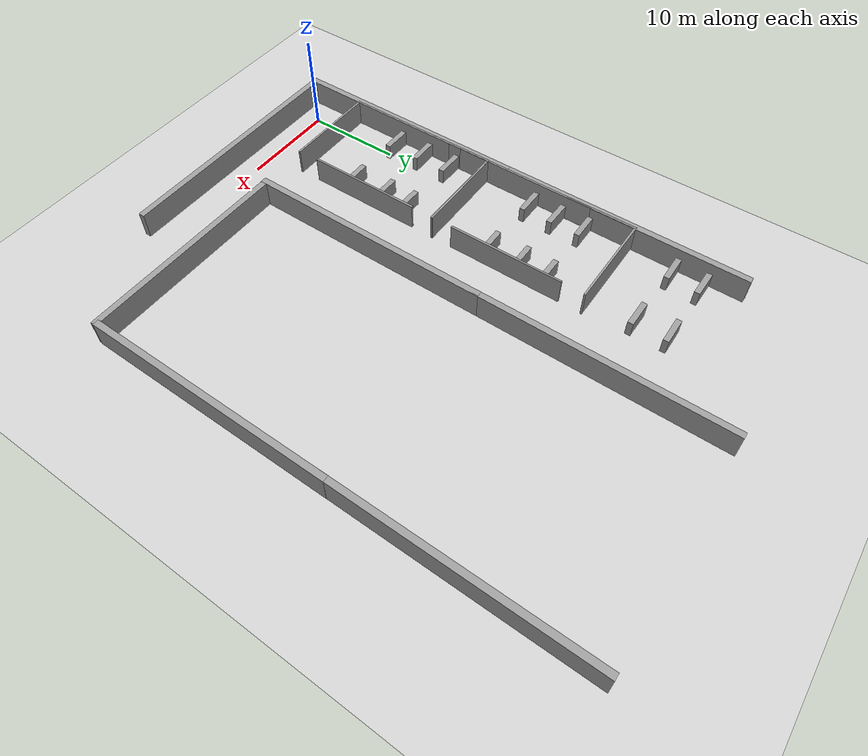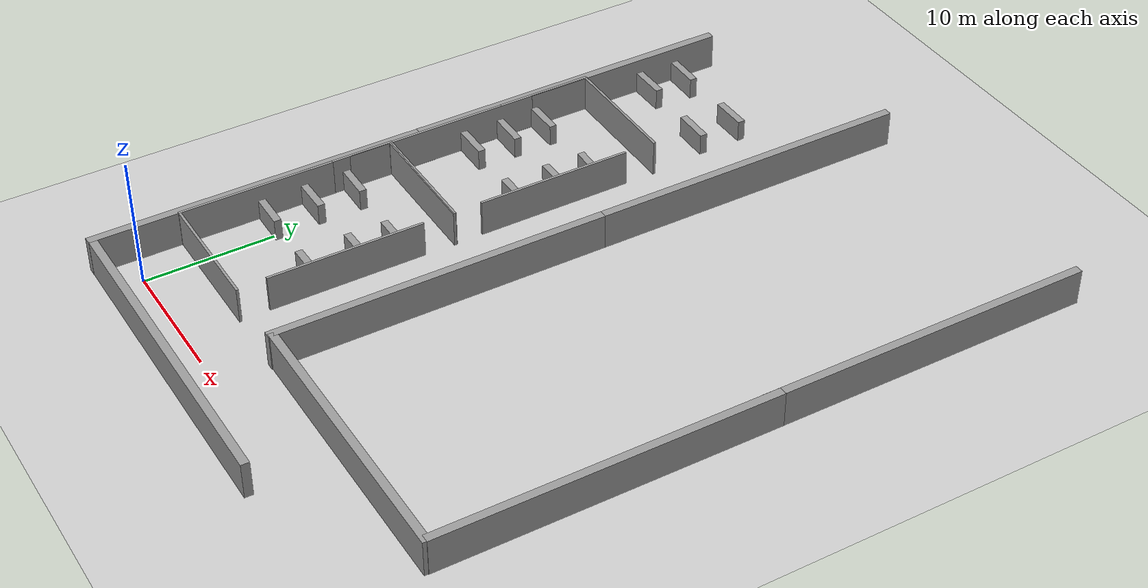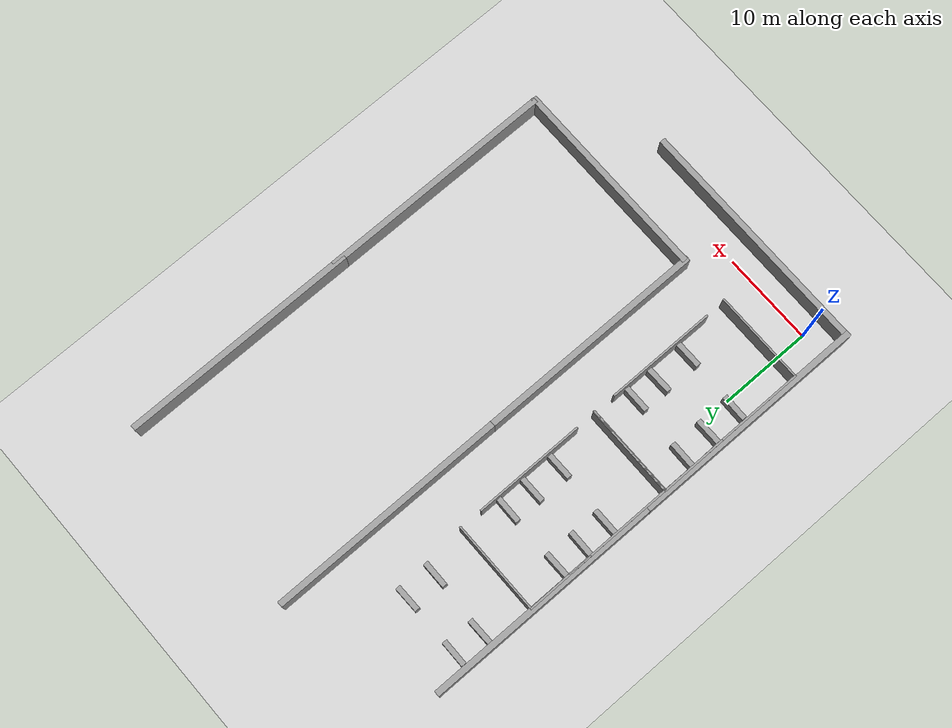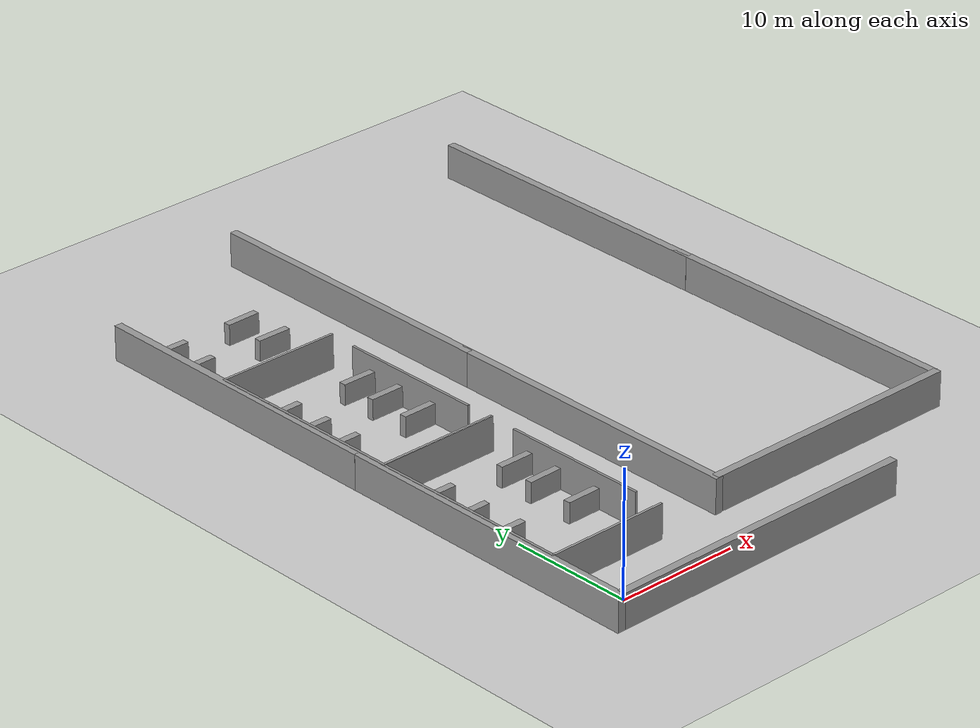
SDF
<sdf version="1.7">
 <world name="default">
  <model name="ground_plane">
   <static>1</static>
   <link name="link">
    <collision name="collision">
     <geometry><plane><normal>0 0 1</normal><size>100 100</size></plane></geometry>
     <surface><friction><ode><mu>100</mu><mu2>50</mu2></ode></friction></surface>
    </collision>
    <visual name="visual">
     <cast_shadows>0</cast_shadows>
     <geometry><plane><normal>0 0 1</normal><size>100 100</size></plane></geometry>
     <material>
      <script><uri>file://media/materials/scripts/gazebo.material</uri><name>Gazebo/Grey</name></script>
     </material>
    </visual>
   </link>
  </model>
  <model name="grey_wall_long">
   <link name="link">
    <pose>0 0 1.37589 0 -0 0</pose>
    <inertial>
     <inertia><ixx>0</ixx><ixy>0</ixy><ixz>0</ixz><iyy>0</iyy><iyz>0</iyz><izz>0</izz></inertia>
     <mass>0</mass>
    </inertial>
    <visual name="visual">
     <cast_shadows>0</cast_shadows>
     <geometry><box><size>25.8815 0.642976 2.8</size></box></geometry>
     <material>
      <script>
       <uri>model://grey_wall/materials/scripts</uri>
       <uri>model://grey_wall/materials/textures</uri>
       <name>vrc/grey_wall</name>
      </script>
      <shader type="pixel"><normal_map>__default__</normal_map></shader>
      <ambient>1 1 1 1</ambient>
      <diffuse>1 1 1 1</diffuse>
      <specular>0 0 0 1</specular>
      <emissive>0 0 0 1</emissive>
     </material>
    </visual>
    <collision name="collision">
     <geometry><box><size>25.8815 0.642976 2.8</size></box></geometry>
     <surface>
      <friction>
       <ode><mu>1</mu><mu2>1</mu2><fdir1>0 0 0</fdir1><slip1>0</slip1><slip2>0</slip2></ode>
       <torsional>
        <coefficient>1</coefficient>
        <patch_radius>0</patch_radius>
        <surface_radius>0</surface_radius>
        <use_patch_radius>1</use_patch_radius>
        <ode><slip>0</slip></ode>
       </torsional>
      </friction>
      <bounce><restitution_coefficient>0</restitution_coefficient><threshold>1e+06</threshold></bounce>
      <contact>
       <collide_without_contact>0</collide_without_contact>
       <collide_without_contact_bitmask>1</collide_without_contact_bitmask>
       <collide_bitmask>1</collide_bitmask>
       <ode>
        <soft_cfm>0</soft_cfm>
        <soft_erp>0.2</soft_erp>
        <kp>1e+13</kp>
        <kd>1</kd>
        <max_vel>0.01</max_vel>
        <min_depth>0</min_depth>
       </ode>
       <bullet>
        <split_impulse>1</split_impulse>
        <split_impulse_penetration_threshold>-0.01</split_impulse_penetration_threshold>
        <soft_cfm>0</soft_cfm>
        <soft_erp>0.2</soft_erp>
        <kp>1e+13</kp>
        <kd>1</kd>
       </bullet>
      </contact>
     </surface>
    </collision>
   </link>
   <static>1</static>
   <pose>10.3524 -2.38269 0 0 -0 0</pose>
  </model>
  <model name="grew_wall_long_vertial">
   <model name="grey_wall_long">
    <link name="link">
     <pose>0 0 1.37589 0 -0 0</pose>
     <inertial>
      <inertia><ixx>0</ixx><ixy>0</ixy><ixz>0</ixz><iyy>0</iyy><iyz>0</iyz><izz>0</izz></inertia>
      <mass>0</mass>
     </inertial>
     <visual name="visual">
      <cast_shadows>0</cast_shadows>
      <geometry><box><size>25.8815 0.642976 2.8</size></box></geometry>
      <material>
       <script>
        <uri>model://grey_wall/materials/scripts</uri>
        <uri>model://grey_wall/materials/textures</uri>
        <name>vrc/grey_wall</name>
       </script>
       <shader type="pixel"><normal_map>__default__</normal_map></shader>
       <ambient>1 1 1 1</ambient>
       <diffuse>1 1 1 1</diffuse>
       <specular>0 0 0 1</specular>
       <emissive>0 0 0 1</emissive>
      </material>
     </visual>
     <collision name="collision">
      <geometry><box><size>25.8815 0.642976 2.8</size></box></geometry>
      <surface>
       <friction>
        <ode><mu>1</mu><mu2>1</mu2><fdir1>0 0 0</fdir1><slip1>0</slip1><slip2>0</slip2></ode>
        <torsional>
         <coefficient>1</coefficient>
         <patch_radius>0</patch_radius>
         <surface_radius>0</surface_radius>
         <use_patch_radius>1</use_patch_radius>
         <ode><slip>0</slip></ode>
        </torsional>
       </friction>
       <bounce><restitution_coefficient>0</restitution_coefficient><threshold>1e+06</threshold></bounce>
       <contact>
        <collide_without_contact>0</collide_without_contact>
        <collide_without_contact_bitmask>1</collide_without_contact_bitmask>
        <collide_bitmask>1</collide_bitmask>
        <ode>
         <soft_cfm>0</soft_cfm>
         <soft_erp>0.2</soft_erp>
         <kp>1e+13</kp>
         <kd>1</kd>
         <max_vel>0.01</max_vel>
         <min_depth>0</min_depth>
        </ode>
        <bullet>
         <split_impulse>1</split_impulse>
         <split_impulse_penetration_threshold>-0.01</split_impulse_penetration_threshold>
         <soft_cfm>0</soft_cfm>
         <soft_erp>0.2</soft_erp>
         <kp>1e+13</kp>
         <kd>1</kd>
        </bullet>
       </contact>
      </surface>
     </collision>
    </link>
    <static>1</static>
    <pose>1e-06 -0 0 0 -0 1.57003</pose>
   </model>
   <static>0</static>
   <pose>-2.8099 10.2266 0 0 -0 0</pose>
  </model>
  <model name="grew_wall_long_vertial_0">
   <model name="grey_wall_long">
    <link name="link">
     <pose>0 0 1.37589 0 -0 0</pose>
     <inertial>
      <inertia><ixx>0</ixx><ixy>0</ixy><ixz>0</ixz><iyy>0</iyy><iyz>0</iyz><izz>0</izz></inertia>
      <mass>0</mass>
     </inertial>
     <visual name="visual">
      <cast_shadows>0</cast_shadows>
      <geometry><box><size>25.8815 0.642976 2.8</size></box></geometry>
      <material>
       <script>
        <uri>model://grey_wall/materials/scripts</uri>
        <uri>model://grey_wall/materials/textures</uri>
        <name>vrc/grey_wall</name>
       </script>
       <shader type="pixel"><normal_map>__default__</normal_map></shader>
       <ambient>1 1 1 1</ambient>
       <diffuse>1 1 1 1</diffuse>
       <specular>0 0 0 1</specular>
       <emissive>0 0 0 1</emissive>
      </material>
     </visual>
     <collision name="collision">
      <geometry><box><size>25.8815 0.642976 2.8</size></box></geometry>
      <surface>
       <friction>
        <ode><mu>1</mu><mu2>1</mu2><fdir1>0 0 0</fdir1><slip1>0</slip1><slip2>0</slip2></ode>
        <torsional>
         <coefficient>1</coefficient>
         <patch_radius>0</patch_radius>
         <surface_radius>0</surface_radius>
         <use_patch_radius>1</use_patch_radius>
         <ode><slip>0</slip></ode>
        </torsional>
       </friction>
       <bounce><restitution_coefficient>0</restitution_coefficient><threshold>1e+06</threshold></bounce>
       <contact>
        <collide_without_contact>0</collide_without_contact>
        <collide_without_contact_bitmask>1</collide_without_contact_bitmask>
        <collide_bitmask>1</collide_bitmask>
        <ode>
         <soft_cfm>0</soft_cfm>
         <soft_erp>0.2</soft_erp>
         <kp>1e+13</kp>
         <kd>1</kd>
         <max_vel>0.01</max_vel>
         <min_depth>0</min_depth>
        </ode>
        <bullet>
         <split_impulse>1</split_impulse>
         <split_impulse_penetration_threshold>-0.01</split_impulse_penetration_threshold>
         <soft_cfm>0</soft_cfm>
         <soft_erp>0.2</soft_erp>
         <kp>1e+13</kp>
         <kd>1</kd>
        </bullet>
       </contact>
      </surface>
     </collision>
    </link>
    <static>1</static>
    <pose>1e-06 -0 0 0 -0 1.57003</pose>
   </model>
   <static>0</static>
   <pose>-2.79602 36.045 0 0 -0 0</pose>
  </model>
  <model name="jiaoshi">
   <model name="grey_wall">
    <static>1</static>
    <link name="link">
     <pose>0 0 1.4 0 -0 0</pose>
     <collision name="collision"><geometry><box><size>7.5 0.2 2.8</size></box></geometry></collision>
     <visual name="visual">
      <cast_shadows>0</cast_shadows>
      <geometry><box><size>7.5 0.2 2.8</size></box></geometry>
      <material>
       <script>
        <uri>model://grey_wall/materials/scripts</uri>
        <uri>model://grey_wall/materials/textures</uri>
        <name>vrc/grey_wall</name>
       </script>
      </material>
     </visual>
    </link>
    <pose>-3.38172 4.2623 0 0 0 -1.56473</pose>
   </model>
   <model name="grey_wall_10m">
    <link name="link">
     <pose>1.25079 -0.023082 1.4 0 -0 0</pose>
     <inertial>
      <inertia><ixx>0</ixx><ixy>0</ixy><ixz>0</ixz><iyy>0</iyy><iyz>0</iyz><izz>0</izz></inertia>
      <mass>0</mass>
     </inertial>
     <visual name="visual">
      <cast_shadows>0</cast_shadows>
      <geometry><box><size>10.0157 0.2 2.8</size></box></geometry>
      <material>
       <script>
        <uri>model://grey_wall/materials/scripts</uri>
        <uri>model://grey_wall/materials/textures</uri>
        <name>vrc/grey_wall</name>
       </script>
       <shader type="pixel"/>
       <ambient>1 1 1 1</ambient>
       <diffuse>1 1 1 1</diffuse>
       <specular>0 0 0 1</specular>
       <emissive>0 0 0 1</emissive>
      </material>
     </visual>
     <collision name="collision">
      <geometry><box><size>10.0157 0.2 2.8</size></box></geometry>
      <surface>
       <friction>
        <ode><mu>1</mu><mu2>1</mu2><fdir1>0 0 0</fdir1><slip1>0</slip1><slip2>0</slip2></ode>
        <torsional>
         <coefficient>1</coefficient>
         <patch_radius>0</patch_radius>
         <surface_radius>0</surface_radius>
         <use_patch_radius>1</use_patch_radius>
         <ode><slip>0</slip></ode>
        </torsional>
       </friction>
       <bounce><restitution_coefficient>0</restitution_coefficient><threshold>1e+06</threshold></bounce>
       <contact>
        <collide_without_contact>0</collide_without_contact>
        <collide_without_contact_bitmask>1</collide_without_contact_bitmask>
        <collide_bitmask>1</collide_bitmask>
        <ode>
         <soft_cfm>0</soft_cfm>
         <soft_erp>0.2</soft_erp>
         <kp>1e+13</kp>
         <kd>1</kd>
         <max_vel>0.01</max_vel>
         <min_depth>0</min_depth>
        </ode>
        <bullet>
         <split_impulse>1</split_impulse>
         <split_impulse_penetration_threshold>-0.01</split_impulse_penetration_threshold>
         <soft_cfm>0</soft_cfm>
         <soft_erp>0.2</soft_erp>
         <kp>1e+13</kp>
         <kd>1</kd>
        </bullet>
       </contact>
      </surface>
     </collision>
    </link>
    <static>1</static>
    <pose>0.433183 -8.77625 0 0 -0 0</pose>
   </model>
   <model name="grey_wall_10m_0">
    <link name="link">
     <pose>1.25079 -0.023082 1.4 0 -0 0</pose>
     <inertial>
      <inertia><ixx>0</ixx><ixy>0</ixy><ixz>0</ixz><iyy>0</iyy><iyz>0</iyz><izz>0</izz></inertia>
      <mass>0</mass>
     </inertial>
     <visual name="visual">
      <cast_shadows>0</cast_shadows>
      <geometry><box><size>10.0157 0.2 2.8</size></box></geometry>
      <material>
       <script>
        <uri>model://grey_wall/materials/scripts</uri>
        <uri>model://grey_wall/materials/textures</uri>
        <name>vrc/grey_wall</name>
       </script>
       <shader type="pixel"/>
       <ambient>1 1 1 1</ambient>
       <diffuse>1 1 1 1</diffuse>
       <specular>0 0 0 1</specular>
       <emissive>0 0 0 1</emissive>
      </material>
     </visual>
     <collision name="collision">
      <geometry><box><size>10.0157 0.2 2.8</size></box></geometry>
      <surface>
       <friction>
        <ode><mu>1</mu><mu2>1</mu2><fdir1>0 0 0</fdir1><slip1>0</slip1><slip2>0</slip2></ode>
        <torsional>
         <coefficient>1</coefficient>
         <patch_radius>0</patch_radius>
         <surface_radius>0</surface_radius>
         <use_patch_radius>1</use_patch_radius>
         <ode><slip>0</slip></ode>
        </torsional>
       </friction>
       <bounce><restitution_coefficient>0</restitution_coefficient><threshold>1e+06</threshold></bounce>
       <contact>
        <collide_without_contact>0</collide_without_contact>
        <collide_without_contact_bitmask>1</collide_without_contact_bitmask>
        <collide_bitmask>1</collide_bitmask>
        <ode>
         <soft_cfm>0</soft_cfm>
         <soft_erp>0.2</soft_erp>
         <kp>1e+13</kp>
         <kd>1</kd>
         <max_vel>0.01</max_vel>
         <min_depth>0</min_depth>
        </ode>
        <bullet>
         <split_impulse>1</split_impulse>
         <split_impulse_penetration_threshold>-0.01</split_impulse_penetration_threshold>
         <soft_cfm>0</soft_cfm>
         <soft_erp>0.2</soft_erp>
         <kp>1e+13</kp>
         <kd>1</kd>
        </bullet>
       </contact>
      </surface>
     </collision>
    </link>
    <static>1</static>
    <pose>0.377364 7.92573 0 0 -0 0</pose>
   </model>
   <model name="grey_wall_12m_vertial">
    <link name="link">
     <pose>0.289112 -0.003891 1.4 0 0 -1.5701</pose>
     <inertial>
      <inertia><ixx>0</ixx><ixy>0</ixy><ixz>0</ixz><iyy>0</iyy><iyz>0</iyz><izz>0</izz></inertia>
      <mass>0</mass>
     </inertial>
     <visual name="visual">
      <cast_shadows>0</cast_shadows>
      <geometry><box><size>12.0527 0.2 2.8</size></box></geometry>
      <material>
       <script>
        <uri>model://grey_wall/materials/scripts</uri>
        <uri>model://grey_wall/materials/textures</uri>
        <name>vrc/grey_wall</name>
       </script>
       <shader type="pixel"/>
       <ambient>1 1 1 1</ambient>
       <diffuse>1 1 1 1</diffuse>
       <specular>0 0 0 1</specular>
       <emissive>0 0 0 1</emissive>
      </material>
     </visual>
     <collision name="collision">
      <geometry><box><size>12.0527 0.2 2.8</size></box></geometry>
      <surface>
       <friction>
        <ode><mu>1</mu><mu2>1</mu2><fdir1>0 0 0</fdir1><slip1>0</slip1><slip2>0</slip2></ode>
        <torsional>
         <coefficient>1</coefficient>
         <patch_radius>0</patch_radius>
         <surface_radius>0</surface_radius>
         <use_patch_radius>1</use_patch_radius>
         <ode><slip>0</slip></ode>
        </torsional>
       </friction>
       <bounce><restitution_coefficient>0</restitution_coefficient><threshold>1e+06</threshold></bounce>
       <contact>
        <collide_without_contact>0</collide_without_contact>
        <collide_without_contact_bitmask>1</collide_without_contact_bitmask>
        <collide_bitmask>1</collide_bitmask>
        <ode>
         <soft_cfm>0</soft_cfm>
         <soft_erp>0.2</soft_erp>
         <kp>1e+13</kp>
         <kd>1</kd>
         <max_vel>0.01</max_vel>
         <min_depth>0</min_depth>
        </ode>
        <bullet>
         <split_impulse>1</split_impulse>
         <split_impulse_penetration_threshold>-0.01</split_impulse_penetration_threshold>
         <soft_cfm>0</soft_cfm>
         <soft_erp>0.2</soft_erp>
         <kp>1e+13</kp>
         <kd>1</kd>
        </bullet>
       </contact>
      </surface>
     </collision>
    </link>
    <static>1</static>
    <pose>-3.63668 -2.87268 0 0 -0 0</pose>
   </model>
   <model name="grey_wall_12m_vertial_0">
    <link name="link">
     <pose>0.289112 -0.003891 1.4 0 0 -1.5701</pose>
     <inertial>
      <inertia><ixx>0</ixx><ixy>0</ixy><ixz>0</ixz><iyy>0</iyy><iyz>0</iyz><izz>0</izz></inertia>
      <mass>0</mass>
     </inertial>
     <visual name="visual">
      <cast_shadows>0</cast_shadows>
      <geometry><box><size>12.0527 0.2 2.8</size></box></geometry>
      <material>
       <script>
        <uri>model://grey_wall/materials/scripts</uri>
        <uri>model://grey_wall/materials/textures</uri>
        <name>vrc/grey_wall</name>
       </script>
       <shader type="pixel"/>
       <ambient>1 1 1 1</ambient>
       <diffuse>1 1 1 1</diffuse>
       <specular>0 0 0 1</specular>
       <emissive>0 0 0 1</emissive>
      </material>
     </visual>
     <collision name="collision">
      <geometry><box><size>12.0527 0.2 2.8</size></box></geometry>
      <surface>
       <friction>
        <ode><mu>1</mu><mu2>1</mu2><fdir1>0 0 0</fdir1><slip1>0</slip1><slip2>0</slip2></ode>
        <torsional>
         <coefficient>1</coefficient>
         <patch_radius>0</patch_radius>
         <surface_radius>0</surface_radius>
         <use_patch_radius>1</use_patch_radius>
         <ode><slip>0</slip></ode>
        </torsional>
       </friction>
       <bounce><restitution_coefficient>0</restitution_coefficient><threshold>1e+06</threshold></bounce>
       <contact>
        <collide_without_contact>0</collide_without_contact>
        <collide_without_contact_bitmask>1</collide_without_contact_bitmask>
        <collide_bitmask>1</collide_bitmask>
        <ode>
         <soft_cfm>0</soft_cfm>
         <soft_erp>0.2</soft_erp>
         <kp>1e+13</kp>
         <kd>1</kd>
         <max_vel>0.01</max_vel>
         <min_depth>0</min_depth>
        </ode>
        <bullet>
         <split_impulse>1</split_impulse>
         <split_impulse_penetration_threshold>-0.01</split_impulse_penetration_threshold>
         <soft_cfm>0</soft_cfm>
         <soft_erp>0.2</soft_erp>
         <kp>1e+13</kp>
         <kd>1</kd>
        </bullet>
       </contact>
      </surface>
     </collision>
    </link>
    <static>1</static>
    <pose>6.20786 -0.539083 0 0 -0 0</pose>
   </model>
   <static>0</static>
   <pose>0.80037 12.8654 0 0 -0 0</pose>
  </model>
  <model name="jiaoshi_clone">
   <model name="grey_wall">
    <static>1</static>
    <link name="link">
     <pose>0 0 1.4 0 -0 0</pose>
     <collision name="collision"><geometry><box><size>7.5 0.2 2.8</size></box></geometry></collision>
     <visual name="visual">
      <cast_shadows>0</cast_shadows>
      <geometry><box><size>7.5 0.2 2.8</size></box></geometry>
      <material>
       <script>
        <uri>model://grey_wall/materials/scripts</uri>
        <uri>model://grey_wall/materials/textures</uri>
        <name>vrc/grey_wall</name>
       </script>
      </material>
     </visual>
    </link>
    <pose>-3.38172 4.2623 0 0 0 -1.56473</pose>
   </model>
   <model name="grey_wall_10m">
    <link name="link">
     <pose>1.25079 -0.023082 1.4 0 -0 0</pose>
     <inertial>
      <inertia><ixx>0</ixx><ixy>0</ixy><ixz>0</ixz><iyy>0</iyy><iyz>0</iyz><izz>0</izz></inertia>
      <mass>0</mass>
     </inertial>
     <visual name="visual">
      <cast_shadows>0</cast_shadows>
      <geometry><box><size>10.0157 0.2 2.8</size></box></geometry>
      <material>
       <script>
        <uri>model://grey_wall/materials/scripts</uri>
        <uri>model://grey_wall/materials/textures</uri>
        <name>vrc/grey_wall</name>
       </script>
       <shader type="pixel"/>
       <ambient>1 1 1 1</ambient>
       <diffuse>1 1 1 1</diffuse>
       <specular>0 0 0 1</specular>
       <emissive>0 0 0 1</emissive>
      </material>
     </visual>
     <collision name="collision">
      <geometry><box><size>10.0157 0.2 2.8</size></box></geometry>
      <surface>
       <friction>
        <ode><mu>1</mu><mu2>1</mu2><fdir1>0 0 0</fdir1><slip1>0</slip1><slip2>0</slip2></ode>
        <torsional>
         <coefficient>1</coefficient>
         <patch_radius>0</patch_radius>
         <surface_radius>0</surface_radius>
         <use_patch_radius>1</use_patch_radius>
         <ode><slip>0</slip></ode>
        </torsional>
       </friction>
       <bounce><restitution_coefficient>0</restitution_coefficient><threshold>1e+06</threshold></bounce>
       <contact>
        <collide_without_contact>0</collide_without_contact>
        <collide_without_contact_bitmask>1</collide_without_contact_bitmask>
        <collide_bitmask>1</collide_bitmask>
        <ode>
         <soft_cfm>0</soft_cfm>
         <soft_erp>0.2</soft_erp>
         <kp>1e+13</kp>
         <kd>1</kd>
         <max_vel>0.01</max_vel>
         <min_depth>0</min_depth>
        </ode>
        <bullet>
         <split_impulse>1</split_impulse>
         <split_impulse_penetration_threshold>-0.01</split_impulse_penetration_threshold>
         <soft_cfm>0</soft_cfm>
         <soft_erp>0.2</soft_erp>
         <kp>1e+13</kp>
         <kd>1</kd>
        </bullet>
       </contact>
      </surface>
     </collision>
    </link>
    <static>1</static>
    <pose>0.433183 -8.77625 0 0 -0 0</pose>
   </model>
   <model name="grey_wall_10m_0">
    <link name="link">
     <pose>1.25079 -0.023082 1.4 0 -0 0</pose>
     <inertial>
      <inertia><ixx>0</ixx><ixy>0</ixy><ixz>0</ixz><iyy>0</iyy><iyz>0</iyz><izz>0</izz></inertia>
      <mass>0</mass>
     </inertial>
     <visual name="visual">
      <cast_shadows>0</cast_shadows>
      <geometry><box><size>10.0157 0.2 2.8</size></box></geometry>
      <material>
       <script>
        <uri>model://grey_wall/materials/scripts</uri>
        <uri>model://grey_wall/materials/textures</uri>
        <name>vrc/grey_wall</name>
       </script>
       <shader type="pixel"/>
       <ambient>1 1 1 1</ambient>
       <diffuse>1 1 1 1</diffuse>
       <specular>0 0 0 1</specular>
       <emissive>0 0 0 1</emissive>
      </material>
     </visual>
     <collision name="collision">
      <geometry><box><size>10.0157 0.2 2.8</size></box></geometry>
      <surface>
       <friction>
        <ode><mu>1</mu><mu2>1</mu2><fdir1>0 0 0</fdir1><slip1>0</slip1><slip2>0</slip2></ode>
        <torsional>
         <coefficient>1</coefficient>
         <patch_radius>0</patch_radius>
         <surface_radius>0</surface_radius>
         <use_patch_radius>1</use_patch_radius>
         <ode><slip>0</slip></ode>
        </torsional>
       </friction>
       <bounce><restitution_coefficient>0</restitution_coefficient><threshold>1e+06</threshold></bounce>
       <contact>
        <collide_without_contact>0</collide_without_contact>
        <collide_without_contact_bitmask>1</collide_without_contact_bitmask>
        <collide_bitmask>1</collide_bitmask>
        <ode>
         <soft_cfm>0</soft_cfm>
         <soft_erp>0.2</soft_erp>
         <kp>1e+13</kp>
         <kd>1</kd>
         <max_vel>0.01</max_vel>
         <min_depth>0</min_depth>
        </ode>
        <bullet>
         <split_impulse>1</split_impulse>
         <split_impulse_penetration_threshold>-0.01</split_impulse_penetration_threshold>
         <soft_cfm>0</soft_cfm>
         <soft_erp>0.2</soft_erp>
         <kp>1e+13</kp>
         <kd>1</kd>
        </bullet>
       </contact>
      </surface>
     </collision>
    </link>
    <static>1</static>
    <pose>0.377364 7.92573 0 0 -0 0</pose>
   </model>
   <model name="grey_wall_12m_vertial">
    <link name="link">
     <pose>0.289112 -0.003891 1.4 0 0 -1.5701</pose>
     <inertial>
      <inertia><ixx>0</ixx><ixy>0</ixy><ixz>0</ixz><iyy>0</iyy><iyz>0</iyz><izz>0</izz></inertia>
      <mass>0</mass>
     </inertial>
     <visual name="visual">
      <cast_shadows>0</cast_shadows>
      <geometry><box><size>12.0527 0.2 2.8</size></box></geometry>
      <material>
       <script>
        <uri>model://grey_wall/materials/scripts</uri>
        <uri>model://grey_wall/materials/textures</uri>
        <name>vrc/grey_wall</name>
       </script>
       <shader type="pixel"/>
       <ambient>1 1 1 1</ambient>
       <diffuse>1 1 1 1</diffuse>
       <specular>0 0 0 1</specular>
       <emissive>0 0 0 1</emissive>
      </material>
     </visual>
     <collision name="collision">
      <geometry><box><size>12.0527 0.2 2.8</size></box></geometry>
      <surface>
       <friction>
        <ode><mu>1</mu><mu2>1</mu2><fdir1>0 0 0</fdir1><slip1>0</slip1><slip2>0</slip2></ode>
        <torsional>
         <coefficient>1</coefficient>
         <patch_radius>0</patch_radius>
         <surface_radius>0</surface_radius>
         <use_patch_radius>1</use_patch_radius>
         <ode><slip>0</slip></ode>
        </torsional>
       </friction>
       <bounce><restitution_coefficient>0</restitution_coefficient><threshold>1e+06</threshold></bounce>
       <contact>
        <collide_without_contact>0</collide_without_contact>
        <collide_without_contact_bitmask>1</collide_without_contact_bitmask>
        <collide_bitmask>1</collide_bitmask>
        <ode>
         <soft_cfm>0</soft_cfm>
         <soft_erp>0.2</soft_erp>
         <kp>1e+13</kp>
         <kd>1</kd>
         <max_vel>0.01</max_vel>
         <min_depth>0</min_depth>
        </ode>
        <bullet>
         <split_impulse>1</split_impulse>
         <split_impulse_penetration_threshold>-0.01</split_impulse_penetration_threshold>
         <soft_cfm>0</soft_cfm>
         <soft_erp>0.2</soft_erp>
         <kp>1e+13</kp>
         <kd>1</kd>
        </bullet>
       </contact>
      </surface>
     </collision>
    </link>
    <static>1</static>
    <pose>-3.63668 -2.87268 0 0 -0 0</pose>
   </model>
   <model name="grey_wall_12m_vertial_0">
    <link name="link">
     <pose>0.289112 -0.003891 1.4 0 0 -1.5701</pose>
     <inertial>
      <inertia><ixx>0</ixx><ixy>0</ixy><ixz>0</ixz><iyy>0</iyy><iyz>0</iyz><izz>0</izz></inertia>
      <mass>0</mass>
     </inertial>
     <visual name="visual">
      <cast_shadows>0</cast_shadows>
      <geometry><box><size>12.0527 0.2 2.8</size></box></geometry>
      <material>
       <script>
        <uri>model://grey_wall/materials/scripts</uri>
        <uri>model://grey_wall/materials/textures</uri>
        <name>vrc/grey_wall</name>
       </script>
       <shader type="pixel"/>
       <ambient>1 1 1 1</ambient>
       <diffuse>1 1 1 1</diffuse>
       <specular>0 0 0 1</specular>
       <emissive>0 0 0 1</emissive>
      </material>
     </visual>
     <collision name="collision">
      <geometry><box><size>12.0527 0.2 2.8</size></box></geometry>
      <surface>
       <friction>
        <ode><mu>1</mu><mu2>1</mu2><fdir1>0 0 0</fdir1><slip1>0</slip1><slip2>0</slip2></ode>
        <torsional>
         <coefficient>1</coefficient>
         <patch_radius>0</patch_radius>
         <surface_radius>0</surface_radius>
         <use_patch_radius>1</use_patch_radius>
         <ode><slip>0</slip></ode>
        </torsional>
       </friction>
       <bounce><restitution_coefficient>0</restitution_coefficient><threshold>1e+06</threshold></bounce>
       <contact>
        <collide_without_contact>0</collide_without_contact>
        <collide_without_contact_bitmask>1</collide_without_contact_bitmask>
        <collide_bitmask>1</collide_bitmask>
        <ode>
         <soft_cfm>0</soft_cfm>
         <soft_erp>0.2</soft_erp>
         <kp>1e+13</kp>
         <kd>1</kd>
         <max_vel>0.01</max_vel>
         <min_depth>0</min_depth>
        </ode>
        <bullet>
         <split_impulse>1</split_impulse>
         <split_impulse_penetration_threshold>-0.01</split_impulse_penetration_threshold>
         <soft_cfm>0</soft_cfm>
         <soft_erp>0.2</soft_erp>
         <kp>1e+13</kp>
         <kd>1</kd>
        </bullet>
       </contact>
      </surface>
     </collision>
    </link>
    <static>1</static>
    <pose>6.20786 -0.539083 0 0 -0 0</pose>
   </model>
   <static>0</static>
   <pose>0.77997 29.5098 0 0 -0 0</pose>
  </model>
  <model name="grew_wall_long_vertial_1">
   <model name="grey_wall_long">
    <link name="link">
     <pose>0 0 1.37589 0 -0 0</pose>
     <inertial>
      <inertia><ixx>0</ixx><ixy>0</ixy><ixz>0</ixz><iyy>0</iyy><iyz>0</iyz><izz>0</izz></inertia>
      <mass>0</mass>
     </inertial>
     <visual name="visual">
      <cast_shadows>0</cast_shadows>
      <geometry><box><size>25.8815 0.642976 2.8</size></box></geometry>
      <material>
       <script>
        <uri>model://grey_wall/materials/scripts</uri>
        <uri>model://grey_wall/materials/textures</uri>
        <name>vrc/grey_wall</name>
       </script>
       <shader type="pixel"><normal_map>__default__</normal_map></shader>
       <ambient>1 1 1 1</ambient>
       <diffuse>1 1 1 1</diffuse>
       <specular>0 0 0 1</specular>
       <emissive>0 0 0 1</emissive>
      </material>
     </visual>
     <collision name="collision">
      <geometry><box><size>25.8815 0.642976 2.8</size></box></geometry>
      <surface>
       <friction>
        <ode><mu>1</mu><mu2>1</mu2><fdir1>0 0 0</fdir1><slip1>0</slip1><slip2>0</slip2></ode>
        <torsional>
         <coefficient>1</coefficient>
         <patch_radius>0</patch_radius>
         <surface_radius>0</surface_radius>
         <use_patch_radius>1</use_patch_radius>
         <ode><slip>0</slip></ode>
        </torsional>
       </friction>
       <bounce><restitution_coefficient>0</restitution_coefficient><threshold>1e+06</threshold></bounce>
       <contact>
        <collide_without_contact>0</collide_without_contact>
        <collide_without_contact_bitmask>1</collide_without_contact_bitmask>
        <collide_bitmask>1</collide_bitmask>
        <ode>
         <soft_cfm>0</soft_cfm>
         <soft_erp>0.2</soft_erp>
         <kp>1e+13</kp>
         <kd>1</kd>
         <max_vel>0.01</max_vel>
         <min_depth>0</min_depth>
        </ode>
        <bullet>
         <split_impulse>1</split_impulse>
         <split_impulse_penetration_threshold>-0.01</split_impulse_penetration_threshold>
         <soft_cfm>0</soft_cfm>
         <soft_erp>0.2</soft_erp>
         <kp>1e+13</kp>
         <kd>1</kd>
        </bullet>
       </contact>
      </surface>
     </collision>
    </link>
    <static>1</static>
    <pose>1e-06 -0 0 0 -0 1.57003</pose>
   </model>
   <static>0</static>
   <pose>12.7747 16.7856 0 0 -0 0</pose>
  </model>
  <model name="grew_wall_long_vertial_1_clone">
   <model name="grey_wall_long">
    <link name="link">
     <pose>0 0 1.37589 0 -0 0</pose>
     <inertial>
      <inertia><ixx>0</ixx><ixy>0</ixy><ixz>0</ixz><iyy>0</iyy><iyz>0</iyz><izz>0</izz></inertia>
      <mass>0</mass>
     </inertial>
     <visual name="visual">
      <cast_shadows>0</cast_shadows>
      <geometry><box><size>25.8815 0.642976 2.8</size></box></geometry>
      <material>
       <script>
        <uri>model://grey_wall/materials/scripts</uri>
        <uri>model://grey_wall/materials/textures</uri>
        <name>vrc/grey_wall</name>
       </script>
       <shader type="pixel"><normal_map>__default__</normal_map></shader>
       <ambient>1 1 1 1</ambient>
       <diffuse>1 1 1 1</diffuse>
       <specular>0 0 0 1</specular>
       <emissive>0 0 0 1</emissive>
      </material>
     </visual>
     <collision name="collision">
      <geometry><box><size>25.8815 0.642976 2.8</size></box></geometry>
      <surface>
       <friction>
        <ode><mu>1</mu><mu2>1</mu2><fdir1>0 0 0</fdir1><slip1>0</slip1><slip2>0</slip2></ode>
        <torsional>
         <coefficient>1</coefficient>
         <patch_radius>0</patch_radius>
         <surface_radius>0</surface_radius>
         <use_patch_radius>1</use_patch_radius>
         <ode><slip>0</slip></ode>
        </torsional>
       </friction>
       <bounce><restitution_coefficient>0</restitution_coefficient><threshold>1e+06</threshold></bounce>
       <contact>
        <collide_without_contact>0</collide_without_contact>
        <collide_without_contact_bitmask>1</collide_without_contact_bitmask>
        <collide_bitmask>1</collide_bitmask>
        <ode>
         <soft_cfm>0</soft_cfm>
         <soft_erp>0.2</soft_erp>
         <kp>1e+13</kp>
         <kd>1</kd>
         <max_vel>0.01</max_vel>
         <min_depth>0</min_depth>
        </ode>
        <bullet>
         <split_impulse>1</split_impulse>
         <split_impulse_penetration_threshold>-0.01</split_impulse_penetration_threshold>
         <soft_cfm>0</soft_cfm>
         <soft_erp>0.2</soft_erp>
         <kp>1e+13</kp>
         <kd>1</kd>
        </bullet>
       </contact>
      </surface>
     </collision>
    </link>
    <static>1</static>
    <pose>1e-06 -0 0 0 -0 1.57003</pose>
   </model>
   <static>0</static>
   <pose>12.7931 41.69 0 0 -0 0</pose>
  </model>
  <model name="grew_wall_long_vertial_1_clone_clone">
   <model name="grey_wall_long">
    <link name="link">
     <pose>0 0 1.37589 0 -0 0</pose>
     <inertial>
      <inertia><ixx>0</ixx><ixy>0</ixy><ixz>0</ixz><iyy>0</iyy><iyz>0</iyz><izz>0</izz></inertia>
      <mass>0</mass>
     </inertial>
     <visual name="visual">
      <cast_shadows>0</cast_shadows>
      <geometry><box><size>25.8815 0.642976 2.8</size></box></geometry>
      <material>
       <script>
        <uri>model://grey_wall/materials/scripts</uri>
        <uri>model://grey_wall/materials/textures</uri>
        <name>vrc/grey_wall</name>
       </script>
       <shader type="pixel"><normal_map>__default__</normal_map></shader>
       <ambient>1 1 1 1</ambient>
       <diffuse>1 1 1 1</diffuse>
       <specular>0 0 0 1</specular>
       <emissive>0 0 0 1</emissive>
      </material>
     </visual>
     <collision name="collision">
      <geometry><box><size>25.8815 0.642976 2.8</size></box></geometry>
      <surface>
       <friction>
        <ode><mu>1</mu><mu2>1</mu2><fdir1>0 0 0</fdir1><slip1>0</slip1><slip2>0</slip2></ode>
        <torsional>
         <coefficient>1</coefficient>
         <patch_radius>0</patch_radius>
         <surface_radius>0</surface_radius>
         <use_patch_radius>1</use_patch_radius>
         <ode><slip>0</slip></ode>
        </torsional>
       </friction>
       <bounce><restitution_coefficient>0</restitution_coefficient><threshold>1e+06</threshold></bounce>
       <contact>
        <collide_without_contact>0</collide_without_contact>
        <collide_without_contact_bitmask>1</collide_without_contact_bitmask>
        <collide_bitmask>1</collide_bitmask>
        <ode>
         <soft_cfm>0</soft_cfm>
         <soft_erp>0.2</soft_erp>
         <kp>1e+13</kp>
         <kd>1</kd>
         <max_vel>0.01</max_vel>
         <min_depth>0</min_depth>
        </ode>
        <bullet>
         <split_impulse>1</split_impulse>
         <split_impulse_penetration_threshold>-0.01</split_impulse_penetration_threshold>
         <soft_cfm>0</soft_cfm>
         <soft_erp>0.2</soft_erp>
         <kp>1e+13</kp>
         <kd>1</kd>
        </bullet>
       </contact>
      </surface>
     </collision>
    </link>
    <static>1</static>
    <pose>1e-06 -0 0 0 -0 1.57003</pose>
   </model>
   <static>0</static>
   <pose>34.6302 41.653 0 0 -0 0</pose>
  </model>
  <model name="grew_wall_long_vertial_1_clone_clone_0">
   <model name="grey_wall_long">
    <link name="link">
     <pose>0 0 1.37589 0 -0 0</pose>
     <inertial>
      <inertia><ixx>0</ixx><ixy>0</ixy><ixz>0</ixz><iyy>0</iyy><iyz>0</iyz><izz>0</izz></inertia>
      <mass>0</mass>
     </inertial>
     <visual name="visual">
      <cast_shadows>0</cast_shadows>
      <geometry><box><size>25.8815 0.642976 2.8</size></box></geometry>
      <material>
       <script>
        <uri>model://grey_wall/materials/scripts</uri>
        <uri>model://grey_wall/materials/textures</uri>
        <name>vrc/grey_wall</name>
       </script>
       <shader type="pixel"><normal_map>__default__</normal_map></shader>
       <ambient>1 1 1 1</ambient>
       <diffuse>1 1 1 1</diffuse>
       <specular>0 0 0 1</specular>
       <emissive>0 0 0 1</emissive>
      </material>
     </visual>
     <collision name="collision">
      <geometry><box><size>25.8815 0.642976 2.8</size></box></geometry>
      <surface>
       <friction>
        <ode><mu>1</mu><mu2>1</mu2><fdir1>0 0 0</fdir1><slip1>0</slip1><slip2>0</slip2></ode>
        <torsional>
         <coefficient>1</coefficient>
         <patch_radius>0</patch_radius>
         <surface_radius>0</surface_radius>
         <use_patch_radius>1</use_patch_radius>
         <ode><slip>0</slip></ode>
        </torsional>
       </friction>
       <bounce><restitution_coefficient>0</restitution_coefficient><threshold>1e+06</threshold></bounce>
       <contact>
        <collide_without_contact>0</collide_without_contact>
        <collide_without_contact_bitmask>1</collide_without_contact_bitmask>
        <collide_bitmask>1</collide_bitmask>
        <ode>
         <soft_cfm>0</soft_cfm>
         <soft_erp>0.2</soft_erp>
         <kp>1e+13</kp>
         <kd>1</kd>
         <max_vel>0.01</max_vel>
         <min_depth>0</min_depth>
        </ode>
        <bullet>
         <split_impulse>1</split_impulse>
         <split_impulse_penetration_threshold>-0.01</split_impulse_penetration_threshold>
         <soft_cfm>0</soft_cfm>
         <soft_erp>0.2</soft_erp>
         <kp>1e+13</kp>
         <kd>1</kd>
        </bullet>
       </contact>
      </surface>
     </collision>
    </link>
    <static>1</static>
    <pose>1e-06 -0 0 0 -0 1.57003</pose>
   </model>
   <static>0</static>
   <pose>34.6201 17.1407 0 0 -0 0</pose>
  </model>
  <model name="grey_wall_long_term_clone">
   <link name="link">
    <pose>-1.74587 -0.378849 1.37589 0 -0 0</pose>
    <inertial>
     <inertia><ixx>0</ixx><ixy>0</ixy><ixz>0</ixz><iyy>0</iyy><iyz>0</iyz><izz>0</izz></inertia>
     <mass>0</mass>
    </inertial>
    <visual name="visual">
     <cast_shadows>0</cast_shadows>
     <geometry><box><size>22.1596 0.642976 2.8</size></box></geometry>
     <material>
      <script>
       <uri>model://grey_wall/materials/scripts</uri>
       <uri>model://grey_wall/materials/textures</uri>
       <name>vrc/grey_wall</name>
      </script>
      <shader type="pixel"><normal_map>__default__</normal_map></shader>
      <ambient>1 1 1 1</ambient>
      <diffuse>1 1 1 1</diffuse>
      <specular>0 0 0 1</specular>
      <emissive>0 0 0 1</emissive>
     </material>
    </visual>
    <collision name="collision">
     <geometry><box><size>22.1596 0.642976 2.8</size></box></geometry>
     <surface>
      <friction>
       <ode><mu>1</mu><mu2>1</mu2><fdir1>0 0 0</fdir1><slip1>0</slip1><slip2>0</slip2></ode>
       <torsional>
        <coefficient>1</coefficient>
        <patch_radius>0</patch_radius>
        <surface_radius>0</surface_radius>
        <use_patch_radius>1</use_patch_radius>
        <ode><slip>0</slip></ode>
       </torsional>
      </friction>
      <bounce><restitution_coefficient>0</restitution_coefficient><threshold>1e+06</threshold></bounce>
      <contact>
       <collide_without_contact>0</collide_without_contact>
       <collide_without_contact_bitmask>1</collide_without_contact_bitmask>
       <collide_bitmask>1</collide_bitmask>
       <ode>
        <soft_cfm>0</soft_cfm>
        <soft_erp>0.2</soft_erp>
        <kp>1e+13</kp>
        <kd>1</kd>
        <max_vel>0.01</max_vel>
        <min_depth>0</min_depth>
       </ode>
       <bullet>
        <split_impulse>1</split_impulse>
        <split_impulse_penetration_threshold>-0.01</split_impulse_penetration_threshold>
        <soft_cfm>0</soft_cfm>
        <soft_erp>0.2</soft_erp>
        <kp>1e+13</kp>
        <kd>1</kd>
       </bullet>
      </contact>
     </surface>
    </collision>
   </link>
   <static>1</static>
   <pose>25.5567 4.60243 0 0 -0 0</pose>
  </model>
  <model name="unit_box_clone_0">
   <pose>-0.969699 45.3601 0.834396 0 3.2e-05 -0.007473</pose>
   <link name="link">
    <inertial>
     <mass>1</mass>
     <inertia>
      <ixx>0.166667</ixx>
      <ixy>0</ixy>
      <ixz>0</ixz>
      <iyy>0.166667</iyy>
      <iyz>0</iyz>
      <izz>0.166667</izz>
     </inertia>
    </inertial>
    <collision name="collision"><geometry><box><size>2.81196 0.562598 1.66888</size></box></geometry></collision>
    <visual name="visual">
     <geometry><box><size>2.81196 0.562598 1.66888</size></box></geometry>
     <material>
      <script><name>Gazebo/Grey</name><uri>file://media/materials/scripts/gazebo.material</uri></script>
     </material>
    </visual>
   </link>
  </model>
  <model name="unit_box_clone_1">
   <pose>5.65415 45.356 0.834396 0 -3.2e-05 0.010415</pose>
   <link name="link">
    <inertial>
     <mass>1</mass>
     <inertia>
      <ixx>0.166667</ixx>
      <ixy>0</ixy>
      <ixz>0</ixz>
      <iyy>0.166667</iyy>
      <iyz>0</iyz>
      <izz>0.166667</izz>
     </inertia>
    </inertial>
    <collision name="collision"><geometry><box><size>2.81196 0.562598 1.66888</size></box></geometry></collision>
    <visual name="visual">
     <geometry><box><size>2.81196 0.562598 1.66888</size></box></geometry>
     <material>
      <script><name>Gazebo/Grey</name><uri>file://media/materials/scripts/gazebo.material</uri></script>
     </material>
    </visual>
   </link>
  </model>
  <model name="unit_box_clone_2">
   <pose>-1.047 42.2657 0.834396 -0 -3.2e-05 0.013506</pose>
   <link name="link">
    <inertial>
     <mass>1</mass>
     <inertia>
      <ixx>0.166667</ixx>
      <ixy>0</ixy>
      <ixz>0</ixz>
      <iyy>0.166667</iyy>
      <iyz>0</iyz>
      <izz>0.166667</izz>
     </inertia>
    </inertial>
    <collision name="collision"><geometry><box><size>2.81196 0.562598 1.66888</size></box></geometry></collision>
    <visual name="visual">
     <geometry><box><size>2.81196 0.562598 1.66888</size></box></geometry>
     <material>
      <script><name>Gazebo/Grey</name><uri>file://media/materials/scripts/gazebo.material</uri></script>
     </material>
    </visual>
   </link>
  </model>
  <model name="unit_box_clone_3">
   <pose>5.67871 41.9763 0.834396 -0 3.2e-05 -0.008804</pose>
   <link name="link">
    <inertial>
     <mass>1</mass>
     <inertia>
      <ixx>0.166667</ixx>
      <ixy>0</ixy>
      <ixz>0</ixz>
      <iyy>0.166667</iyy>
      <iyz>0</iyz>
      <izz>0.166667</izz>
     </inertia>
    </inertial>
    <collision name="collision"><geometry><box><size>2.81196 0.562598 1.66888</size></box></geometry></collision>
    <visual name="visual">
     <geometry><box><size>2.81196 0.562598 1.66888</size></box></geometry>
     <material>
      <script><name>Gazebo/Grey</name><uri>file://media/materials/scripts/gazebo.material</uri></script>
     </material>
    </visual>
   </link>
  </model>
  <model name="unit_box_clone_4">
   <pose>-1.05896 32.8444 0.834396 0 3.2e-05 0.010359</pose>
   <link name="link">
    <inertial>
     <mass>1</mass>
     <inertia>
      <ixx>0.166667</ixx>
      <ixy>0</ixy>
      <ixz>0</ixz>
      <iyy>0.166667</iyy>
      <iyz>0</iyz>
      <izz>0.166667</izz>
     </inertia>
    </inertial>
    <collision name="collision"><geometry><box><size>2.81196 0.562598 1.66888</size></box></geometry></collision>
    <visual name="visual">
     <geometry><box><size>2.81196 0.562598 1.66888</size></box></geometry>
     <material>
      <script><name>Gazebo/Grey</name><uri>file://media/materials/scripts/gazebo.material</uri></script>
     </material>
    </visual>
   </link>
  </model>
  <model name="unit_box_clone_5">
   <pose>5.76154 32.8738 0.834396 0 -3.2e-05 -0.013456</pose>
   <link name="link">
    <inertial>
     <mass>1</mass>
     <inertia>
      <ixx>0.166667</ixx>
      <ixy>0</ixy>
      <ixz>0</ixz>
      <iyy>0.166667</iyy>
      <iyz>0</iyz>
      <izz>0.166667</izz>
     </inertia>
    </inertial>
    <collision name="collision"><geometry><box><size>2.81196 0.562598 1.66888</size></box></geometry></collision>
    <visual name="visual">
     <geometry><box><size>2.81196 0.562598 1.66888</size></box></geometry>
     <material>
      <script><name>Gazebo/Grey</name><uri>file://media/materials/scripts/gazebo.material</uri></script>
     </material>
    </visual>
   </link>
  </model>
  <model name="unit_box_clone_6">
   <pose>-1.02062 29.826 0.834396 0 -3.2e-05 -0.01364</pose>
   <link name="link">
    <inertial>
     <mass>1</mass>
     <inertia>
      <ixx>0.166667</ixx>
      <ixy>0</ixy>
      <ixz>0</ixz>
      <iyy>0.166667</iyy>
      <iyz>0</iyz>
      <izz>0.166667</izz>
     </inertia>
    </inertial>
    <collision name="collision"><geometry><box><size>2.81196 0.562598 1.66888</size></box></geometry></collision>
    <visual name="visual">
     <geometry><box><size>2.81196 0.562598 1.66888</size></box></geometry>
     <material>
      <script><name>Gazebo/Grey</name><uri>file://media/materials/scripts/gazebo.material</uri></script>
     </material>
    </visual>
   </link>
  </model>
  <model name="unit_box_clone_7">
   <pose>5.73141 29.918 0.834396 0 3.2e-05 0.002467</pose>
   <link name="link">
    <inertial>
     <mass>1</mass>
     <inertia>
      <ixx>0.166667</ixx>
      <ixy>0</ixy>
      <ixz>0</ixz>
      <iyy>0.166667</iyy>
      <iyz>0</iyz>
      <izz>0.166667</izz>
     </inertia>
    </inertial>
    <collision name="collision"><geometry><box><size>2.81196 0.562598 1.66888</size></box></geometry></collision>
    <visual name="visual">
     <geometry><box><size>2.81196 0.562598 1.66888</size></box></geometry>
     <material>
      <script><name>Gazebo/Grey</name><uri>file://media/materials/scripts/gazebo.material</uri></script>
     </material>
    </visual>
   </link>
  </model>
  <model name="unit_box_clone_8">
   <pose>-1.02377 26.7455 0.834396 0 -3.2e-05 -0.005644</pose>
   <link name="link">
    <inertial>
     <mass>1</mass>
     <inertia>
      <ixx>0.166667</ixx>
      <ixy>0</ixy>
      <ixz>0</ixz>
      <iyy>0.166667</iyy>
      <iyz>0</iyz>
      <izz>0.166667</izz>
     </inertia>
    </inertial>
    <collision name="collision"><geometry><box><size>2.81196 0.562598 1.66888</size></box></geometry></collision>
    <visual name="visual">
     <geometry><box><size>2.81196 0.562598 1.66888</size></box></geometry>
     <material>
      <script><name>Gazebo/Grey</name><uri>file://media/materials/scripts/gazebo.material</uri></script>
     </material>
    </visual>
   </link>
  </model>
  <model name="unit_box_clone_9">
   <pose>5.73085 26.4941 0.834396 0 3.2e-05 0.008653</pose>
   <link name="link">
    <inertial>
     <mass>1</mass>
     <inertia>
      <ixx>0.166667</ixx>
      <ixy>0</ixy>
      <ixz>0</ixz>
      <iyy>0.166667</iyy>
      <iyz>0</iyz>
      <izz>0.166667</izz>
     </inertia>
    </inertial>
    <collision name="collision"><geometry><box><size>2.81196 0.562598 1.66888</size></box></geometry></collision>
    <visual name="visual">
     <geometry><box><size>2.81196 0.562598 1.66888</size></box></geometry>
     <material>
      <script><name>Gazebo/Grey</name><uri>file://media/materials/scripts/gazebo.material</uri></script>
     </material>
    </visual>
   </link>
  </model>
  <model name="unit_box_clone_10">
   <pose>-1.05727 16.9849 0.834396 0 -3.2e-05 -0.013247</pose>
   <link name="link">
    <inertial>
     <mass>1</mass>
     <inertia>
      <ixx>0.166667</ixx>
      <ixy>0</ixy>
      <ixz>0</ixz>
      <iyy>0.166667</iyy>
      <iyz>0</iyz>
      <izz>0.166667</izz>
     </inertia>
    </inertial>
    <collision name="collision"><geometry><box><size>2.81196 0.562598 1.66888</size></box></geometry></collision>
    <visual name="visual">
     <geometry><box><size>2.81196 0.562598 1.66888</size></box></geometry>
     <material>
      <script><name>Gazebo/Grey</name><uri>file://media/materials/scripts/gazebo.material</uri></script>
     </material>
    </visual>
   </link>
  </model>
  <model name="unit_box_clone_11">
   <pose>5.77823 16.6638 0.834396 -0 3.2e-05 -0.003084</pose>
   <link name="link">
    <inertial>
     <mass>1</mass>
     <inertia>
      <ixx>0.166667</ixx>
      <ixy>0</ixy>
      <ixz>0</ixz>
      <iyy>0.166667</iyy>
      <iyz>0</iyz>
      <izz>0.166667</izz>
     </inertia>
    </inertial>
    <collision name="collision"><geometry><box><size>2.81196 0.562598 1.66888</size></box></geometry></collision>
    <visual name="visual">
     <geometry><box><size>2.81196 0.562598 1.66888</size></box></geometry>
     <material>
      <script><name>Gazebo/Grey</name><uri>file://media/materials/scripts/gazebo.material</uri></script>
     </material>
    </visual>
   </link>
  </model>
  <model name="unit_box_clone_12">
   <pose>-1.02814 13.6245 0.834396 -0 -3.2e-05 0.002814</pose>
   <link name="link">
    <inertial>
     <mass>1</mass>
     <inertia>
      <ixx>0.166667</ixx>
      <ixy>0</ixy>
      <ixz>0</ixz>
      <iyy>0.166667</iyy>
      <iyz>0</iyz>
      <izz>0.166667</izz>
     </inertia>
    </inertial>
    <collision name="collision"><geometry><box><size>2.81196 0.562598 1.66888</size></box></geometry></collision>
    <visual name="visual">
     <geometry><box><size>2.81196 0.562598 1.66888</size></box></geometry>
     <material>
      <script><name>Gazebo/Grey</name><uri>file://media/materials/scripts/gazebo.material</uri></script>
     </material>
    </visual>
   </link>
  </model>
  <model name="unit_box_clone_13">
   <pose>5.7466 13.7885 0.834396 -0 -3.2e-05 0.011761</pose>
   <link name="link">
    <inertial>
     <mass>1</mass>
     <inertia>
      <ixx>0.166667</ixx>
      <ixy>0</ixy>
      <ixz>0</ixz>
      <iyy>0.166667</iyy>
      <iyz>0</iyz>
      <izz>0.166667</izz>
     </inertia>
    </inertial>
    <collision name="collision"><geometry><box><size>2.81196 0.562598 1.66888</size></box></geometry></collision>
    <visual name="visual">
     <geometry><box><size>2.81196 0.562598 1.66888</size></box></geometry>
     <material>
      <script><name>Gazebo/Grey</name><uri>file://media/materials/scripts/gazebo.material</uri></script>
     </material>
    </visual>
   </link>
  </model>
  <model name="unit_box_clone_14">
   <pose>-0.942484 10.1893 0.834396 -0 3.2e-05 -0.01358</pose>
   <link name="link">
    <inertial>
     <mass>1</mass>
     <inertia>
      <ixx>0.166667</ixx>
      <ixy>0</ixy>
      <ixz>0</ixz>
      <iyy>0.166667</iyy>
      <iyz>0</iyz>
      <izz>0.166667</izz>
     </inertia>
    </inertial>
    <collision name="collision"><geometry><box><size>2.81196 0.562598 1.66888</size></box></geometry></collision>
    <visual name="visual">
     <geometry><box><size>2.81196 0.562598 1.66888</size></box></geometry>
     <material>
      <script><name>Gazebo/Grey</name><uri>file://media/materials/scripts/gazebo.material</uri></script>
     </material>
    </visual>
   </link>
  </model>
  <model name="unit_box_clone_15">
   <pose>5.75111 9.99794 0.834396 0 -3.2e-05 0.005615</pose>
   <link name="link">
    <inertial>
     <mass>1</mass>
     <inertia>
      <ixx>0.166667</ixx>
      <ixy>0</ixy>
      <ixz>0</ixz>
      <iyy>0.166667</iyy>
      <iyz>0</iyz>
      <izz>0.166667</izz>
     </inertia>
    </inertial>
    <collision name="collision"><geometry><box><size>2.81196 0.562598 1.66888</size></box></geometry></collision>
    <visual name="visual">
     <geometry><box><size>2.81196 0.562598 1.66888</size></box></geometry>
     <material>
      <script><name>Gazebo/Grey</name><uri>file://media/materials/scripts/gazebo.material</uri></script>
     </material>
    </visual>
   </link>
  </model>
 </world>
</sdf>
